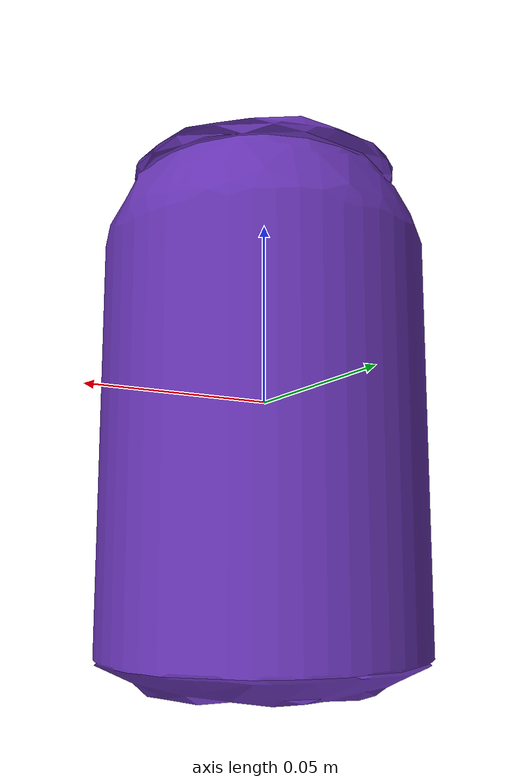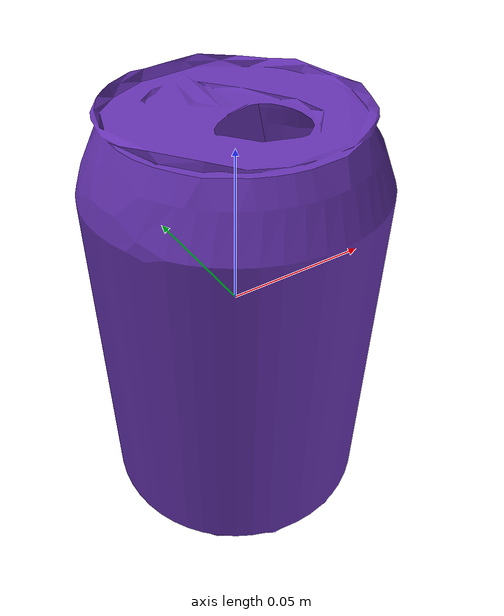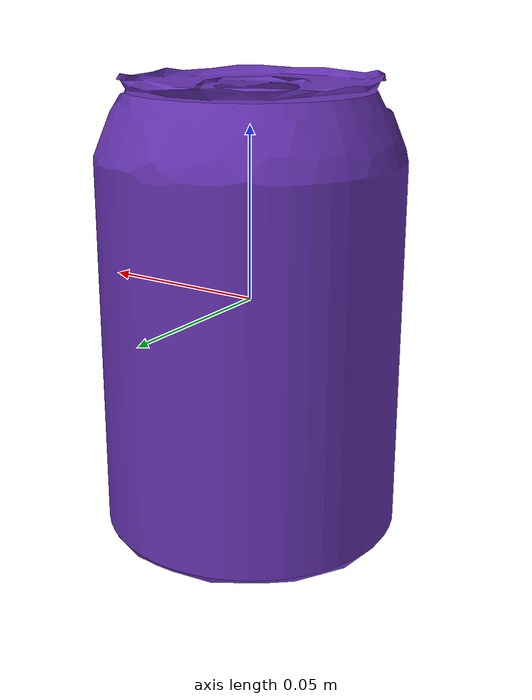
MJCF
<mujoco model="top_watertight_tiny">
  <default>
    <default group="2" type="mesh" contype="0" conaffinity="0">
      <geom group="2" type="mesh" contype="0" conaffinity="0"/>
    </default>
    <default group="3" type="mesh">
      <geom group="3" type="mesh"/>
    </default>
  </default>
  <asset>
    <mesh file="top_watertight_tiny.obj"/>
    <mesh file="top_watertight_tiny_collision_0.obj"/>
    <mesh file="top_watertight_tiny_collision_1.obj"/>
    <mesh file="top_watertight_tiny_collision_2.obj"/>
    <mesh file="top_watertight_tiny_collision_3.obj"/>
    <mesh file="top_watertight_tiny_collision_4.obj"/>
    <mesh file="top_watertight_tiny_collision_5.obj"/>
    <mesh file="top_watertight_tiny_collision_6.obj"/>
    <mesh file="top_watertight_tiny_collision_7.obj"/>
    <mesh file="top_watertight_tiny_collision_8.obj"/>
    <mesh file="top_watertight_tiny_collision_9.obj"/>
    <mesh file="top_watertight_tiny_collision_10.obj"/>
    <mesh file="top_watertight_tiny_collision_11.obj"/>
    <mesh file="top_watertight_tiny_collision_12.obj"/>
    <mesh file="top_watertight_tiny_collision_13.obj"/>
    <mesh file="top_watertight_tiny_collision_14.obj"/>
    <mesh file="top_watertight_tiny_collision_15.obj"/>
    <mesh file="top_watertight_tiny_collision_16.obj"/>
    <mesh file="top_watertight_tiny_collision_17.obj"/>
    <mesh file="top_watertight_tiny_collision_18.obj"/>
    <mesh file="top_watertight_tiny_collision_19.obj"/>
    <mesh file="top_watertight_tiny_collision_20.obj"/>
    <mesh file="top_watertight_tiny_collision_21.obj"/>
    <mesh file="top_watertight_tiny_collision_22.obj"/>
    <mesh file="top_watertight_tiny_collision_23.obj"/>
    <mesh file="top_watertight_tiny_collision_24.obj"/>
    <mesh file="top_watertight_tiny_collision_25.obj"/>
    <mesh file="top_watertight_tiny_collision_26.obj"/>
    <mesh file="top_watertight_tiny_collision_27.obj"/>
    <mesh file="top_watertight_tiny_collision_28.obj"/>
    <mesh file="top_watertight_tiny_collision_29.obj"/>
    <mesh file="top_watertight_tiny_collision_30.obj"/>
    <mesh file="top_watertight_tiny_collision_31.obj"/>
    <mesh file="top_watertight_tiny_collision_32.obj"/>
    <mesh file="top_watertight_tiny_collision_33.obj"/>
    <mesh file="top_watertight_tiny_collision_34.obj"/>
    <mesh file="top_watertight_tiny_collision_35.obj"/>
    <mesh file="top_watertight_tiny_collision_36.obj"/>
    <mesh file="top_watertight_tiny_collision_37.obj"/>
    <mesh file="top_watertight_tiny_collision_38.obj"/>
    <mesh file="top_watertight_tiny_collision_39.obj"/>
    <mesh file="top_watertight_tiny_collision_40.obj"/>
    <mesh file="top_watertight_tiny_collision_41.obj"/>
    <mesh file="top_watertight_tiny_collision_42.obj"/>
    <mesh file="top_watertight_tiny_collision_43.obj"/>
    <mesh file="top_watertight_tiny_collision_44.obj"/>
    <mesh file="top_watertight_tiny_collision_45.obj"/>
    <mesh file="top_watertight_tiny_collision_46.obj"/>
    <mesh file="top_watertight_tiny_collision_47.obj"/>
    <mesh file="top_watertight_tiny_collision_48.obj"/>
    <mesh file="top_watertight_tiny_collision_49.obj"/>
    <mesh file="top_watertight_tiny_collision_50.obj"/>
    <mesh file="top_watertight_tiny_collision_51.obj"/>
    <mesh file="top_watertight_tiny_collision_52.obj"/>
    <mesh file="top_watertight_tiny_collision_53.obj"/>
    <mesh file="top_watertight_tiny_collision_54.obj"/>
    <mesh file="top_watertight_tiny_collision_55.obj"/>
    <mesh file="top_watertight_tiny_collision_56.obj"/>
    <mesh file="top_watertight_tiny_collision_57.obj"/>
    <mesh file="top_watertight_tiny_collision_58.obj"/>
    <mesh file="top_watertight_tiny_collision_59.obj"/>
    <mesh file="top_watertight_tiny_collision_60.obj"/>
    <mesh file="top_watertight_tiny_collision_61.obj"/>
    <mesh file="top_watertight_tiny_collision_62.obj"/>
    <mesh file="top_watertight_tiny_collision_63.obj"/>
    <mesh file="top_watertight_tiny_collision_64.obj"/>
    <mesh file="top_watertight_tiny_collision_65.obj"/>
  </asset>
  <worldbody>
    <body name="top_watertight_tiny">
      <freejoint/>
      <geom mesh="top_watertight_tiny" group="2" type="mesh" rgba="0.4 0.2 0.7 1" contype="0" conaffinity="0"/>
      <geom mesh="top_watertight_tiny_collision_0" rgba="0.18421882133529055 0.3656646103696174 0.5761190039202659 1" group="3" type="mesh"/>
      <geom mesh="top_watertight_tiny_collision_1" rgba="0.8161591296555939 0.28842398471179487 0.6395194929471497 1" group="3" type="mesh"/>
      <geom mesh="top_watertight_tiny_collision_2" rgba="0.6218160234551363 0.6841056924794889 0.06776879736189567 1" group="3" type="mesh"/>
      <geom mesh="top_watertight_tiny_collision_3" rgba="0.6743247901930687 0.7743033856584594 0.35581052954020553 1" group="3" type="mesh"/>
      <geom mesh="top_watertight_tiny_collision_4" rgba="0.357992442500935 0.41068539820840577 0.06991533126273675 1" group="3" type="mesh"/>
      <geom mesh="top_watertight_tiny_collision_5" rgba="0.6213789906699702 0.41838997272979306 0.2429049486053877 1" group="3" type="mesh"/>
      <geom mesh="top_watertight_tiny_collision_6" rgba="0.017237325895922972 0.4223135819790387 0.36601812473477724 1" group="3" type="mesh"/>
      <geom mesh="top_watertight_tiny_collision_7" rgba="0.3191901220776132 0.38353907433338286 0.9975142277797787 1" group="3" type="mesh"/>
      <geom mesh="top_watertight_tiny_collision_8" rgba="0.17854818825407037 0.9008587893300659 0.7856619085011499 1" group="3" type="mesh"/>
      <geom mesh="top_watertight_tiny_collision_9" rgba="0.5451797663554139 0.2215148803743584 0.8878879082792734 1" group="3" type="mesh"/>
      <geom mesh="top_watertight_tiny_collision_10" rgba="0.6575066807658504 0.710881123237191 0.4557919177195985 1" group="3" type="mesh"/>
      <geom mesh="top_watertight_tiny_collision_11" rgba="0.7767178375112402 0.5961298740419985 0.4182066304892166 1" group="3" type="mesh"/>
      <geom mesh="top_watertight_tiny_collision_12" rgba="0.46410717786231714 0.5179303126257071 0.4603685287517679 1" group="3" type="mesh"/>
      <geom mesh="top_watertight_tiny_collision_13" rgba="0.8220702352631865 0.019615274140966532 0.27611299613055496 1" group="3" type="mesh"/>
      <geom mesh="top_watertight_tiny_collision_14" rgba="0.8253857369040775 0.26836568977741826 0.2959135703554099 1" group="3" type="mesh"/>
      <geom mesh="top_watertight_tiny_collision_15" rgba="0.19021937327540195 0.9638100208835755 0.5659823426302881 1" group="3" type="mesh"/>
      <geom mesh="top_watertight_tiny_collision_16" rgba="0.7120029479414987 0.7695546298462332 0.3066650176405209 1" group="3" type="mesh"/>
      <geom mesh="top_watertight_tiny_collision_17" rgba="0.2225321149501246 0.4131570236079899 0.6632667117713642 1" group="3" type="mesh"/>
      <geom mesh="top_watertight_tiny_collision_18" rgba="0.9375488233655289 0.42784268720897445 0.9226002957441269 1" group="3" type="mesh"/>
      <geom mesh="top_watertight_tiny_collision_19" rgba="0.5745209293689376 0.3995679655756229 0.2845191332261511 1" group="3" type="mesh"/>
      <geom mesh="top_watertight_tiny_collision_20" rgba="0.004701159892891993 0.12451434894734614 0.3188690860477328 1" group="3" type="mesh"/>
      <geom mesh="top_watertight_tiny_collision_21" rgba="0.05704627385758587 0.7433243965239846 0.2416717359458126 1" group="3" type="mesh"/>
      <geom mesh="top_watertight_tiny_collision_22" rgba="0.11959495349868521 0.4046014036607901 0.47894978250508813 1" group="3" type="mesh"/>
      <geom mesh="top_watertight_tiny_collision_23" rgba="0.3760831399373562 0.6319044716648967 0.920374257806438 1" group="3" type="mesh"/>
      <geom mesh="top_watertight_tiny_collision_24" rgba="0.7719228118210957 0.4275659139015201 0.1154475106720273 1" group="3" type="mesh"/>
      <geom mesh="top_watertight_tiny_collision_25" rgba="0.9838219409337723 0.8346386178835179 0.5186036849968226 1" group="3" type="mesh"/>
      <geom mesh="top_watertight_tiny_collision_26" rgba="0.6669907815848403 0.6600431302332253 0.42627411420483496 1" group="3" type="mesh"/>
      <geom mesh="top_watertight_tiny_collision_27" rgba="0.6165161854052615 0.43159344785394094 0.03440434551770055 1" group="3" type="mesh"/>
      <geom mesh="top_watertight_tiny_collision_28" rgba="0.1447945635024237 0.18423944323093566 0.02260400485345837 1" group="3" type="mesh"/>
      <geom mesh="top_watertight_tiny_collision_29" rgba="0.39392930353370936 0.527675984036462 0.3382817840777347 1" group="3" type="mesh"/>
      <geom mesh="top_watertight_tiny_collision_30" rgba="0.021968863453602383 0.5689989242688661 0.46439721594123384 1" group="3" type="mesh"/>
      <geom mesh="top_watertight_tiny_collision_31" rgba="0.020109075818282696 0.6052274679901218 0.3243051844551049 1" group="3" type="mesh"/>
      <geom mesh="top_watertight_tiny_collision_32" rgba="0.5890017841683124 0.6038452818933842 0.6810790811910107 1" group="3" type="mesh"/>
      <geom mesh="top_watertight_tiny_collision_33" rgba="0.6477037615430532 0.5480696707829492 0.11522988524458011 1" group="3" type="mesh"/>
      <geom mesh="top_watertight_tiny_collision_34" rgba="0.9657597956339394 0.0317246821935675 0.7229514468711731 1" group="3" type="mesh"/>
      <geom mesh="top_watertight_tiny_collision_35" rgba="0.14050162152141976 0.007019117350905213 0.8935309318397224 1" group="3" type="mesh"/>
      <geom mesh="top_watertight_tiny_collision_36" rgba="0.5871736154411534 0.14158572171848527 0.7244089798035878 1" group="3" type="mesh"/>
      <geom mesh="top_watertight_tiny_collision_37" rgba="0.545487390970444 0.10635977652837192 0.8351226718478373 1" group="3" type="mesh"/>
      <geom mesh="top_watertight_tiny_collision_38" rgba="0.9872854098703038 0.6912241341178024 0.2532255312744728 1" group="3" type="mesh"/>
      <geom mesh="top_watertight_tiny_collision_39" rgba="0.1692497289933389 0.6830044188753029 0.39045244379562194 1" group="3" type="mesh"/>
      <geom mesh="top_watertight_tiny_collision_40" rgba="0.1457496831616253 0.5901926708238746 0.004449756602151078 1" group="3" type="mesh"/>
      <geom mesh="top_watertight_tiny_collision_41" rgba="0.8413114279680706 0.48638242743002624 0.9912433490962828 1" group="3" type="mesh"/>
      <geom mesh="top_watertight_tiny_collision_42" rgba="0.5145675999834729 0.003268007591242683 0.5518493409381109 1" group="3" type="mesh"/>
      <geom mesh="top_watertight_tiny_collision_43" rgba="0.9383374901379579 0.9881993695639341 0.5227184759413634 1" group="3" type="mesh"/>
      <geom mesh="top_watertight_tiny_collision_44" rgba="0.3306882154384586 0.6017674901449742 0.8856320983605644 1" group="3" type="mesh"/>
      <geom mesh="top_watertight_tiny_collision_45" rgba="0.41941608788266793 0.5818561941993369 0.18184350026943674 1" group="3" type="mesh"/>
      <geom mesh="top_watertight_tiny_collision_46" rgba="0.39051286016973974 0.24469425050329408 0.976442936708411 1" group="3" type="mesh"/>
      <geom mesh="top_watertight_tiny_collision_47" rgba="0.09233043998956358 0.34356863502853907 0.9938335365297731 1" group="3" type="mesh"/>
      <geom mesh="top_watertight_tiny_collision_48" rgba="0.14496598335900523 0.09630799763029552 0.8370954361347372 1" group="3" type="mesh"/>
      <geom mesh="top_watertight_tiny_collision_49" rgba="0.4880226496889015 0.3118720837526704 0.10384434603564252 1" group="3" type="mesh"/>
      <geom mesh="top_watertight_tiny_collision_50" rgba="0.2552742271477064 0.9528862942567101 0.507807609797957 1" group="3" type="mesh"/>
      <geom mesh="top_watertight_tiny_collision_51" rgba="0.8986799218338325 0.4459648383205562 0.6655469544738024 1" group="3" type="mesh"/>
      <geom mesh="top_watertight_tiny_collision_52" rgba="0.4851360818251139 0.6792308917111773 0.5821692960962839 1" group="3" type="mesh"/>
      <geom mesh="top_watertight_tiny_collision_53" rgba="0.37510085972213436 0.004813916265492102 0.9619486639283963 1" group="3" type="mesh"/>
      <geom mesh="top_watertight_tiny_collision_54" rgba="0.8069255463027045 0.1690579464484273 0.11607497962576752 1" group="3" type="mesh"/>
      <geom mesh="top_watertight_tiny_collision_55" rgba="0.7229749795923496 0.41691589425297515 0.8942146215277621 1" group="3" type="mesh"/>
      <geom mesh="top_watertight_tiny_collision_56" rgba="0.17831239562862844 0.6717040741907141 0.6271431822241634 1" group="3" type="mesh"/>
      <geom mesh="top_watertight_tiny_collision_57" rgba="0.730965175063707 0.11820581813112285 0.5796528443938161 1" group="3" type="mesh"/>
      <geom mesh="top_watertight_tiny_collision_58" rgba="0.5642259569414738 0.5420086458607372 0.39445621493592276 1" group="3" type="mesh"/>
      <geom mesh="top_watertight_tiny_collision_59" rgba="0.6664812933509444 0.05169484719671713 0.768186525983973 1" group="3" type="mesh"/>
      <geom mesh="top_watertight_tiny_collision_60" rgba="0.7369947777161319 0.011264491242033325 0.12282247383857448 1" group="3" type="mesh"/>
      <geom mesh="top_watertight_tiny_collision_61" rgba="0.8801042523278204 0.2918856655851195 0.5127948917035238 1" group="3" type="mesh"/>
      <geom mesh="top_watertight_tiny_collision_62" rgba="0.8651981126592202 0.5836951866033685 0.17656923132877989 1" group="3" type="mesh"/>
      <geom mesh="top_watertight_tiny_collision_63" rgba="0.6188158569693418 0.136161005239687 0.5877530988576493 1" group="3" type="mesh"/>
      <geom mesh="top_watertight_tiny_collision_64" rgba="0.08398105877452322 0.48947266800393074 0.8003821756589031 1" group="3" type="mesh"/>
      <geom mesh="top_watertight_tiny_collision_65" rgba="0.9171738365797252 0.47232163861355925 0.8024642653928566 1" group="3" type="mesh"/>
    </body>
  </worldbody>
</mujoco>
